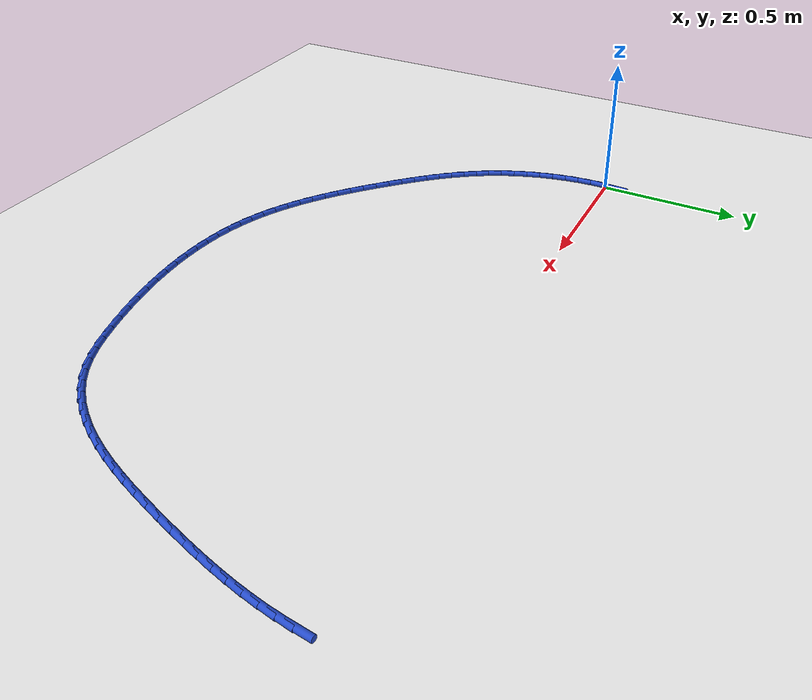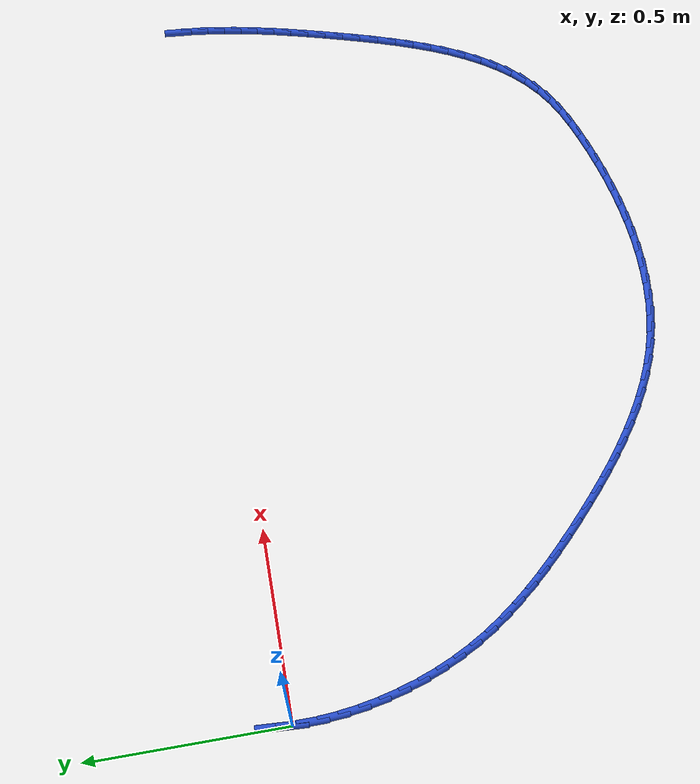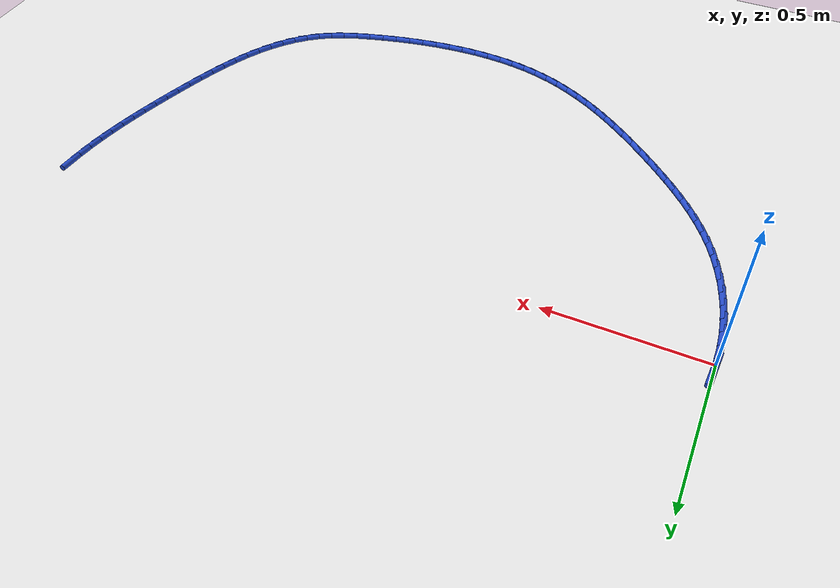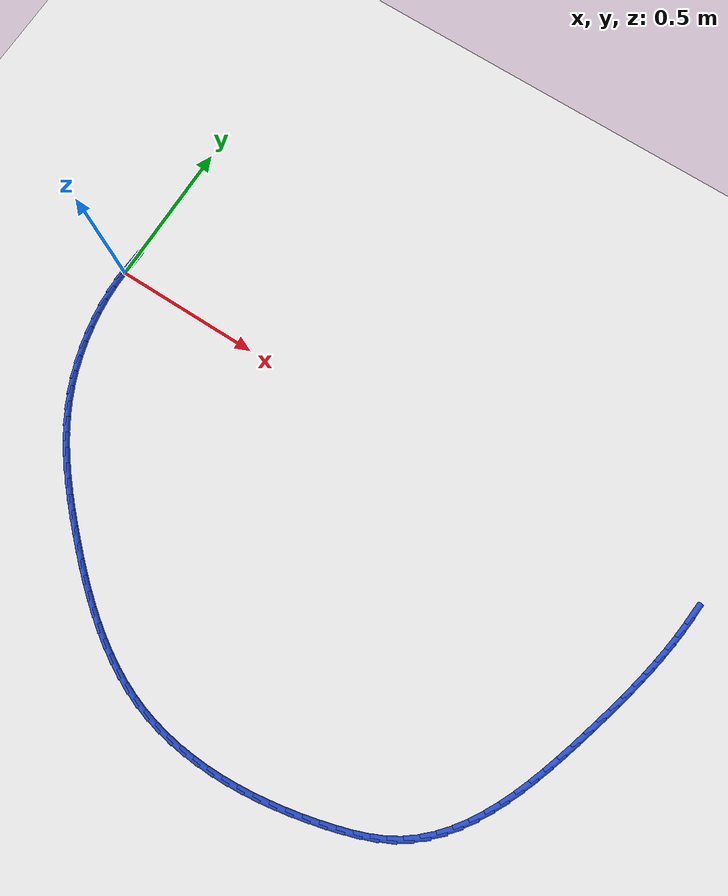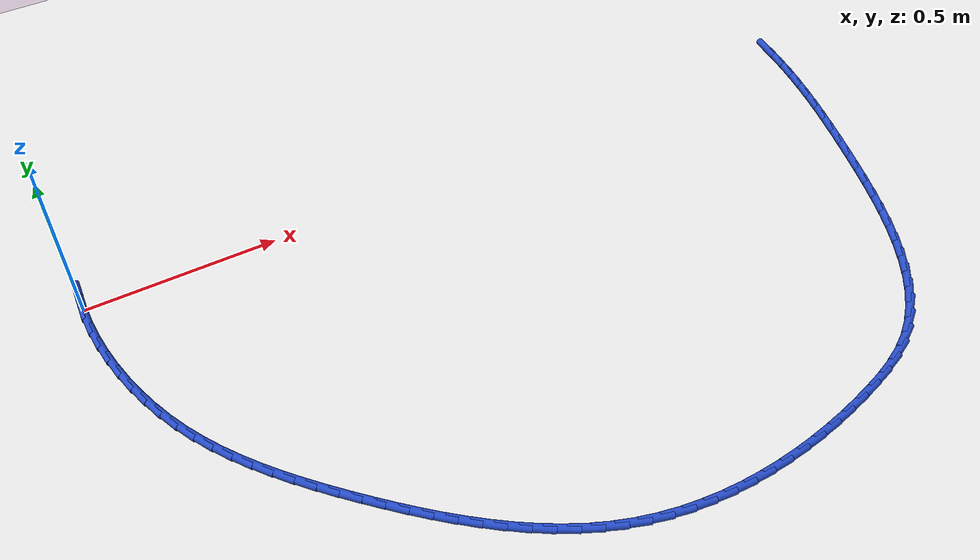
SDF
<sdf version="1.6">
 <world name="default">
  <model name="ground_plane">
   <static>1</static>
   <link name="link">
    <collision name="collision">
     <geometry><plane><normal>0 0 1</normal><size>100 100</size></plane></geometry>
     <surface><friction><ode><mu>100</mu><mu2>50</mu2></ode></friction></surface>
    </collision>
    <visual name="visual">
     <cast_shadows>0</cast_shadows>
     <geometry><plane><normal>0 0 1</normal><size>100 100</size></plane></geometry>
     <material>
      <script><uri>file://media/materials/scripts/gazebo.material</uri><name>Gazebo/WhiteGlow</name></script>
     </material>
    </visual>
   </link>
  </model>
  <model name="line">
   <link name="link_0">
    <pose>1.0408340855860843e-17 8.326672684688674e-17 0.01 0 1.57 1.5136941876043444</pose>
    <collision name="collision">
     <geometry><cylinder><radius>0.01</radius><length>0.08</length></cylinder></geometry>
    </collision>
    <visual name="visual">
     <material>
      <script><name>Gazebo/Blue</name><uri>file://media/materials/scripts/gazebo.material</uri></script>
     </material>
     <geometry><cylinder><radius>0.01</radius><length>0.08</length></cylinder></geometry>
    </visual>
   </link>
   <link name="link_72">
    <pose>2.1155282700317573 0.031848224926894285 0.01 0 1.57 1.48652621558645</pose>
    <collision name="collision">
     <geometry><cylinder><radius>0.01</radius><length>0.08</length></cylinder></geometry>
    </collision>
    <visual name="visual">
     <material>
      <script><name>Gazebo/Blue</name><uri>file://media/materials/scripts/gazebo.material</uri></script>
     </material>
     <geometry><cylinder><radius>0.01</radius><length>0.08</length></cylinder></geometry>
    </visual>
   </link>
   <link name="link_73">
    <pose>2.1113230786885753 -0.017934933611354374 0.01 0 1.57 1.4514240440218522</pose>
    <collision name="collision">
     <geometry><cylinder><radius>0.01</radius><length>0.08</length></cylinder></geometry>
    </collision>
    <visual name="visual">
     <material>
      <script><name>Gazebo/Blue</name><uri>file://media/materials/scripts/gazebo.material</uri></script>
     </material>
     <geometry><cylinder><radius>0.01</radius><length>0.08</length></cylinder></geometry>
    </visual>
   </link>
   <link name="link_74">
    <pose>2.1053743930525406 -0.06753106157821223 0.01 0 1.57 1.4192770511162327</pose>
    <collision name="collision">
     <geometry><cylinder><radius>0.01</radius><length>0.08</length></cylinder></geometry>
    </collision>
    <visual name="visual">
     <material>
      <script><name>Gazebo/Blue</name><uri>file://media/materials/scripts/gazebo.material</uri></script>
     </material>
     <geometry><cylinder><radius>0.01</radius><length>0.08</length></cylinder></geometry>
    </visual>
   </link>
   <link name="link_75">
    <pose>2.097816437116438 -0.11702990215512732 0.01 0 1.57 1.3902664679015286</pose>
    <collision name="collision">
     <geometry><cylinder><radius>0.01</radius><length>0.08</length></cylinder></geometry>
    </collision>
    <visual name="visual">
     <material>
      <script><name>Gazebo/Blue</name><uri>file://media/materials/scripts/gazebo.material</uri></script>
     </material>
     <geometry><cylinder><radius>0.01</radius><length>0.08</length></cylinder></geometry>
    </visual>
   </link>
   <link name="link_76">
    <pose>2.0887834348730516 -0.16652119852354666 0.01 0 1.57 1.364511534390616</pose>
    <collision name="collision">
     <geometry><cylinder><radius>0.01</radius><length>0.08</length></cylinder></geometry>
    </collision>
    <visual name="visual">
     <material>
      <script><name>Gazebo/Blue</name><uri>file://media/materials/scripts/gazebo.material</uri></script>
     </material>
     <geometry><cylinder><radius>0.01</radius><length>0.08</length></cylinder></geometry>
    </visual>
   </link>
   <link name="link_77">
    <pose>2.078409610315166 -0.21609469386491742 0.01 0 1.57 1.3420762548755794</pose>
    <collision name="collision">
     <geometry><cylinder><radius>0.01</radius><length>0.08</length></cylinder></geometry>
    </collision>
    <visual name="visual">
     <material>
      <script><name>Gazebo/Blue</name><uri>file://media/materials/scripts/gazebo.material</uri></script>
     </material>
     <geometry><cylinder><radius>0.01</radius><length>0.08</length></cylinder></geometry>
    </visual>
   </link>
   <link name="link_78">
    <pose>2.0668291874355673 -0.26584013136068757 0.01 0 1.57 1.3229774308372935</pose>
    <collision name="collision">
     <geometry><cylinder><radius>0.01</radius><length>0.08</length></cylinder></geometry>
    </collision>
    <visual name="visual">
     <material>
      <script><name>Gazebo/Blue</name><uri>file://media/materials/scripts/gazebo.material</uri></script>
     </material>
     <geometry><cylinder><radius>0.01</radius><length>0.08</length></cylinder></geometry>
    </visual>
   </link>
   <link name="link_79">
    <pose>2.0541763902270387 -0.3158472541923024 0.01 0 1.57 1.307192978818918</pose>
    <collision name="collision">
     <geometry><cylinder><radius>0.01</radius><length>0.08</length></cylinder></geometry>
    </collision>
    <visual name="visual">
     <material>
      <script><name>Gazebo/Blue</name><uri>file://media/materials/scripts/gazebo.material</uri></script>
     </material>
     <geometry><cylinder><radius>0.01</radius><length>0.08</length></cylinder></geometry>
    </visual>
   </link>
   <link name="link_80">
    <pose>2.040585442682366 -0.3662058055412101 0.01 0 1.57 1.2946698052939263</pose>
    <collision name="collision">
     <geometry><cylinder><radius>0.01</radius><length>0.08</length></cylinder></geometry>
    </collision>
    <visual name="visual">
     <material>
      <script><name>Gazebo/Blue</name><uri>file://media/materials/scripts/gazebo.material</uri></script>
     </material>
     <geometry><cylinder><radius>0.01</radius><length>0.08</length></cylinder></geometry>
    </visual>
   </link>
   <link name="link_81">
    <pose>2.026190568794333 -0.41700552858885775 0.01 0 1.57 1.2851600542314623</pose>
    <collision name="collision">
     <geometry><cylinder><radius>0.01</radius><length>0.08</length></cylinder></geometry>
    </collision>
    <visual name="visual">
     <material>
      <script><name>Gazebo/Blue</name><uri>file://media/materials/scripts/gazebo.material</uri></script>
     </material>
     <geometry><cylinder><radius>0.01</radius><length>0.08</length></cylinder></geometry>
    </visual>
   </link>
   <link name="link_82">
    <pose>2.0111191521943117 -0.4683270463985554 0.01 0 1.57 1.2743036251731987</pose>
    <collision name="collision">
     <geometry><cylinder><radius>0.01</radius><length>0.08</length></cylinder></geometry>
    </collision>
    <visual name="visual">
     <material>
      <script><name>Gazebo/Blue</name><uri>file://media/materials/scripts/gazebo.material</uri></script>
     </material>
     <geometry><cylinder><radius>0.01</radius><length>0.08</length></cylinder></geometry>
    </visual>
   </link>
   <link name="link_83">
    <pose>1.995326577650408 -0.5200216593622096 0.01 0 1.57 1.2575539610958015</pose>
    <collision name="collision">
     <geometry><cylinder><radius>0.01</radius><length>0.08</length></cylinder></geometry>
    </collision>
    <visual name="visual">
     <material>
      <script><name>Gazebo/Blue</name><uri>file://media/materials/scripts/gazebo.material</uri></script>
     </material>
     <geometry><cylinder><radius>0.01</radius><length>0.08</length></cylinder></geometry>
    </visual>
   </link>
   <link name="link_84">
    <pose>1.978587663017944 -0.5716999215899256 0.01 0 1.57 1.234510478617657</pose>
    <collision name="collision">
     <geometry><cylinder><radius>0.01</radius><length>0.08</length></cylinder></geometry>
    </collision>
    <visual name="visual">
     <material>
      <script><name>Gazebo/Blue</name><uri>file://media/materials/scripts/gazebo.material</uri></script>
     </material>
     <geometry><cylinder><radius>0.01</radius><length>0.08</length></cylinder></geometry>
    </visual>
   </link>
   <link name="link_85">
    <pose>1.9606686709113106 -0.6229609806588371 0.01 0 1.57 1.2048033797453965</pose>
    <collision name="collision">
     <geometry><cylinder><radius>0.01</radius><length>0.08</length></cylinder></geometry>
    </collision>
    <visual name="visual">
     <material>
      <script><name>Gazebo/Blue</name><uri>file://media/materials/scripts/gazebo.material</uri></script>
     </material>
     <geometry><cylinder><radius>0.01</radius><length>0.08</length></cylinder></geometry>
    </visual>
   </link>
   <link name="link_86">
    <pose>1.9413358639448997 -0.6734039841460779 0.01 0 1.57 1.1678916608366743</pose>
    <collision name="collision">
     <geometry><cylinder><radius>0.01</radius><length>0.08</length></cylinder></geometry>
    </collision>
    <visual name="visual">
     <material>
      <script><name>Gazebo/Blue</name><uri>file://media/materials/scripts/gazebo.material</uri></script>
     </material>
     <geometry><cylinder><radius>0.01</radius><length>0.08</length></cylinder></geometry>
    </visual>
   </link>
   <link name="link_87">
    <pose>1.9203555047331027 -0.7226280796287822 0.01 0 1.57 1.1230788708324444</pose>
    <collision name="collision">
     <geometry><cylinder><radius>0.01</radius><length>0.08</length></cylinder></geometry>
    </collision>
    <visual name="visual">
     <material>
      <script><name>Gazebo/Blue</name><uri>file://media/materials/scripts/gazebo.material</uri></script>
     </material>
     <geometry><cylinder><radius>0.01</radius><length>0.08</length></cylinder></geometry>
    </visual>
   </link>
   <link name="link_88">
    <pose>1.8974938558903112 -0.7702324146840825 0.01 0 1.57 1.069543976481417</pose>
    <collision name="collision">
     <geometry><cylinder><radius>0.01</radius><length>0.08</length></cylinder></geometry>
    </collision>
    <visual name="visual">
     <material>
      <script><name>Gazebo/Blue</name><uri>file://media/materials/scripts/gazebo.material</uri></script>
     </material>
     <geometry><cylinder><radius>0.01</radius><length>0.08</length></cylinder></geometry>
    </visual>
   </link>
   <link name="link_89">
    <pose>1.8725171800309166 -0.8158161368891133 0.01 0 1.57 1.0064031541049574</pose>
    <collision name="collision">
     <geometry><cylinder><radius>0.01</radius><length>0.08</length></cylinder></geometry>
    </collision>
    <visual name="visual">
     <material>
      <script><name>Gazebo/Blue</name><uri>file://media/materials/scripts/gazebo.material</uri></script>
     </material>
     <geometry><cylinder><radius>0.01</radius><length>0.08</length></cylinder></geometry>
    </visual>
   </link>
   <link name="link_90">
    <pose>1.8451917397693105 -0.8589783938210078 0.01 0 1.57 0.9328233985098401</pose>
    <collision name="collision">
     <geometry><cylinder><radius>0.01</radius><length>0.08</length></cylinder></geometry>
    </collision>
    <visual name="visual">
     <material>
      <script><name>Gazebo/Blue</name><uri>file://media/materials/scripts/gazebo.material</uri></script>
     </material>
     <geometry><cylinder><radius>0.01</radius><length>0.08</length></cylinder></geometry>
    </visual>
   </link>
   <link name="link_91">
    <pose>1.8152837977198837 -0.8993183330569008 0.01 0 1.57 0.8482095898845374</pose>
    <collision name="collision">
     <geometry><cylinder><radius>0.01</radius><length>0.08</length></cylinder></geometry>
    </collision>
    <visual name="visual">
     <material>
      <script><name>Gazebo/Blue</name><uri>file://media/materials/scripts/gazebo.material</uri></script>
     </material>
     <geometry><cylinder><radius>0.01</radius><length>0.08</length></cylinder></geometry>
    </visual>
   </link>
   <link name="link_92">
    <pose>1.7825596164970292 -0.9364351021739248 0.01 0 1.57 0.7524735395124444</pose>
    <collision name="collision">
     <geometry><cylinder><radius>0.01</radius><length>0.08</length></cylinder></geometry>
    </collision>
    <visual name="visual">
     <material>
      <script><name>Gazebo/Blue</name><uri>file://media/materials/scripts/gazebo.material</uri></script>
     </material>
     <geometry><cylinder><radius>0.01</radius><length>0.08</length></cylinder></geometry>
    </visual>
   </link>
   <link name="link_93">
    <pose>1.7467854587151366 -0.9699278487492136 0.01 0 1.57 0.6463538039507484</pose>
    <collision name="collision">
     <geometry><cylinder><radius>0.01</radius><length>0.08</length></cylinder></geometry>
    </collision>
    <visual name="visual">
     <material>
      <script><name>Gazebo/Blue</name><uri>file://media/materials/scripts/gazebo.material</uri></script>
     </material>
     <geometry><cylinder><radius>0.01</radius><length>0.08</length></cylinder></geometry>
    </visual>
   </link>
   <link name="link_94">
    <pose>1.7077275869885986 -0.9993957203599013 0.01 0 1.57 0.5328824947516285</pose>
    <collision name="collision">
     <geometry><cylinder><radius>0.01</radius><length>0.08</length></cylinder></geometry>
    </collision>
    <visual name="visual">
     <material>
      <script><name>Gazebo/Blue</name><uri>file://media/materials/scripts/gazebo.material</uri></script>
     </material>
     <geometry><cylinder><radius>0.01</radius><length>0.08</length></cylinder></geometry>
    </visual>
   </link>
   <link name="link_95">
    <pose>1.66518968925172 -1.024484386364132 0.01 0 1.57 0.4317560234842781</pose>
    <collision name="collision">
     <geometry><cylinder><radius>0.01</radius><length>0.08</length></cylinder></geometry>
    </collision>
    <visual name="visual">
     <material>
      <script><name>Gazebo/Blue</name><uri>file://media/materials/scripts/gazebo.material</uri></script>
     </material>
     <geometry><cylinder><radius>0.01</radius><length>0.08</length></cylinder></geometry>
    </visual>
   </link>
   <link name="link_96">
    <pose>1.6195259814989151 -1.04552385351278 0.01 0 1.57 0.3557548782639355</pose>
    <collision name="collision">
     <geometry><cylinder><radius>0.01</radius><length>0.08</length></cylinder></geometry>
    </collision>
    <visual name="visual">
     <material>
      <script><name>Gazebo/Blue</name><uri>file://media/materials/scripts/gazebo.material</uri></script>
     </material>
     <geometry><cylinder><radius>0.01</radius><length>0.08</length></cylinder></geometry>
    </visual>
   </link>
   <link name="link_97">
    <pose>1.5715096877221122 -1.0633649791024635 0.01 0 1.57 0.30309321381120535</pose>
    <collision name="collision">
     <geometry><cylinder><radius>0.01</radius><length>0.08</length></cylinder></geometry>
    </collision>
    <visual name="visual">
     <material>
      <script><name>Gazebo/Blue</name><uri>file://media/materials/scripts/gazebo.material</uri></script>
     </material>
     <geometry><cylinder><radius>0.01</radius><length>0.08</length></cylinder></geometry>
    </visual>
   </link>
   <link name="link_98">
    <pose>1.5219245371980556 -1.0788716790906412 0.01 0 1.57 0.2693400215066725</pose>
    <collision name="collision">
     <geometry><cylinder><radius>0.01</radius><length>0.08</length></cylinder></geometry>
    </collision>
    <visual name="visual">
     <material>
      <script><name>Gazebo/Blue</name><uri>file://media/materials/scripts/gazebo.material</uri></script>
     </material>
     <geometry><cylinder><radius>0.01</radius><length>0.08</length></cylinder></geometry>
    </visual>
   </link>
   <link name="link_99">
    <pose>1.4714821259368112 -1.0927961925146692 0.01 0 1.57 0.23920866782601974</pose>
    <collision name="collision">
     <geometry><cylinder><radius>0.01</radius><length>0.08</length></cylinder></geometry>
    </collision>
    <visual name="visual">
     <material>
      <script><name>Gazebo/Blue</name><uri>file://media/materials/scripts/gazebo.material</uri></script>
     </material>
     <geometry><cylinder><radius>0.01</radius><length>0.08</length></cylinder></geometry>
    </visual>
   </link>
   <link name="link_100">
    <pose>1.4204715021219334 -1.1052365687150612 0.01 0 1.57 0.20724794021210152</pose>
    <collision name="collision">
     <geometry><cylinder><radius>0.01</radius><length>0.08</length></cylinder></geometry>
    </collision>
    <visual name="visual">
     <material>
      <script><name>Gazebo/Blue</name><uri>file://media/materials/scripts/gazebo.material</uri></script>
     </material>
     <geometry><cylinder><radius>0.01</radius><length>0.08</length></cylinder></geometry>
    </visual>
   </link>
   <link name="link_101">
    <pose>1.3690283212295622 -1.1160533740245695 0.01 0 1.57 0.17322529626640595</pose>
    <collision name="collision">
     <geometry><cylinder><radius>0.01</radius><length>0.08</length></cylinder></geometry>
    </collision>
    <visual name="visual">
     <material>
      <script><name>Gazebo/Blue</name><uri>file://media/materials/scripts/gazebo.material</uri></script>
     </material>
     <geometry><cylinder><radius>0.01</radius><length>0.08</length></cylinder></geometry>
    </visual>
   </link>
   <link name="link_102">
    <pose>1.3172880225406587 -1.125106840061984 0.01 0 1.57 0.13690479581900009</pose>
    <collision name="collision">
     <geometry><cylinder><radius>0.01</radius><length>0.08</length></cylinder></geometry>
    </collision>
    <visual name="visual">
     <material>
      <script><name>Gazebo/Blue</name><uri>file://media/materials/scripts/gazebo.material</uri></script>
     </material>
     <geometry><cylinder><radius>0.01</radius><length>0.08</length></cylinder></geometry>
    </visual>
   </link>
   <link name="link_103">
    <pose>1.2653860453361847 -1.1322571984460943 0.01 0 1.57 0.09804125157841904</pose>
    <collision name="collision">
     <geometry><cylinder><radius>0.01</radius><length>0.08</length></cylinder></geometry>
    </collision>
    <visual name="visual">
     <material>
      <script><name>Gazebo/Blue</name><uri>file://media/materials/scripts/gazebo.material</uri></script>
     </material>
     <geometry><cylinder><radius>0.01</radius><length>0.08</length></cylinder></geometry>
    </visual>
   </link>
   <link name="link_104">
    <pose>1.2134578288971012 -1.1373646807956903 0.01 0 1.57 0.05638350608794965</pose>
    <collision name="collision">
     <geometry><cylinder><radius>0.01</radius><length>0.08</length></cylinder></geometry>
    </collision>
    <visual name="visual">
     <material>
      <script><name>Gazebo/Blue</name><uri>file://media/materials/scripts/gazebo.material</uri></script>
     </material>
     <geometry><cylinder><radius>0.01</radius><length>0.08</length></cylinder></geometry>
    </visual>
   </link>
   <link name="link_105">
    <pose>1.1616388125043704 -1.1402895187295612 0.01 0 1.57 0.011680174834520827</pose>
    <collision name="collision">
     <geometry><cylinder><radius>0.01</radius><length>0.08</length></cylinder></geometry>
    </collision>
    <visual name="visual">
     <material>
      <script><name>Gazebo/Blue</name><uri>file://media/materials/scripts/gazebo.material</uri></script>
     </material>
     <geometry><cylinder><radius>0.01</radius><length>0.08</length></cylinder></geometry>
    </visual>
   </link>
   <link name="link_106">
    <pose>1.110064435438954 -1.140891943866497 0.01 0 1.57 -0.03631143798956349</pose>
    <collision name="collision">
     <geometry><cylinder><radius>0.01</radius><length>0.08</length></cylinder></geometry>
    </collision>
    <visual name="visual">
     <material>
      <script><name>Gazebo/Blue</name><uri>file://media/materials/scripts/gazebo.material</uri></script>
     </material>
     <geometry><cylinder><radius>0.01</radius><length>0.08</length></cylinder></geometry>
    </visual>
   </link>
   <link name="link_107">
    <pose>1.058870136981813 -1.1390321878252876 0.01 0 1.57 -0.08781252275789207</pose>
    <collision name="collision">
     <geometry><cylinder><radius>0.01</radius><length>0.08</length></cylinder></geometry>
    </collision>
    <visual name="visual">
     <material>
      <script><name>Gazebo/Blue</name><uri>file://media/materials/scripts/gazebo.material</uri></script>
     </material>
     <geometry><cylinder><radius>0.01</radius><length>0.08</length></cylinder></geometry>
    </visual>
   </link>
   <link name="link_108">
    <pose>1.0081913564139091 -1.1345704822247222 0.01 0 1.57 -0.1430054576180554</pose>
    <collision name="collision">
     <geometry><cylinder><radius>0.01</radius><length>0.08</length></cylinder></geometry>
    </collision>
    <visual name="visual">
     <material>
      <script><name>Gazebo/Blue</name><uri>file://media/materials/scripts/gazebo.material</uri></script>
     </material>
     <geometry><cylinder><radius>0.01</radius><length>0.08</length></cylinder></geometry>
    </visual>
   </link>
   <link name="link_109">
    <pose>0.9581635330162029 -1.1273670586835902 0.01 0 1.57 -0.2020118325310961</pose>
    <collision name="collision">
     <geometry><cylinder><radius>0.01</radius><length>0.08</length></cylinder></geometry>
    </collision>
    <visual name="visual">
     <material>
      <script><name>Gazebo/Blue</name><uri>file://media/materials/scripts/gazebo.material</uri></script>
     </material>
     <geometry><cylinder><radius>0.01</radius><length>0.08</length></cylinder></geometry>
    </visual>
   </link>
   <link name="link_110">
    <pose>0.9089221060696583 -1.1172821488206826 0.01 0 1.57 -0.26486642230267715</pose>
    <collision name="collision">
     <geometry><cylinder><radius>0.01</radius><length>0.08</length></cylinder></geometry>
    </collision>
    <visual name="visual">
     <material>
      <script><name>Gazebo/Blue</name><uri>file://media/materials/scripts/gazebo.material</uri></script>
     </material>
     <geometry><cylinder><radius>0.01</radius><length>0.08</length></cylinder></geometry>
    </visual>
   </link>
   <link name="link_111">
    <pose>0.8606025148552349 -1.1041759842547871 0.01 0 1.57 -0.3312184352941702</pose>
    <collision name="collision">
     <geometry><cylinder><radius>0.01</radius><length>0.08</length></cylinder></geometry>
    </collision>
    <visual name="visual">
     <material>
      <script><name>Gazebo/Blue</name><uri>file://media/materials/scripts/gazebo.material</uri></script>
     </material>
     <geometry><cylinder><radius>0.01</radius><length>0.08</length></cylinder></geometry>
    </visual>
   </link>
   <link name="link_112">
    <pose>0.8133347442444061 -1.0879212208017253 0.01 0 1.57 -0.39631417597219487</pose>
    <collision name="collision">
     <geometry><cylinder><radius>0.01</radius><length>0.08</length></cylinder></geometry>
    </collision>
    <visual name="visual">
     <material>
      <script><name>Gazebo/Blue</name><uri>file://media/materials/scripts/gazebo.material</uri></script>
     </material>
     <geometry><cylinder><radius>0.01</radius><length>0.08</length></cylinder></geometry>
    </visual>
   </link>
   <link name="link_113">
    <pose>0.7671576198102424 -1.0685981593187834 0.01 0 1.57 -0.4561339815474686</pose>
    <collision name="collision">
     <geometry><cylinder><radius>0.01</radius><length>0.08</length></cylinder></geometry>
    </collision>
    <visual name="visual">
     <material>
      <script><name>Gazebo/Blue</name><uri>file://media/materials/scripts/gazebo.material</uri></script>
     </material>
     <geometry><cylinder><radius>0.01</radius><length>0.08</length></cylinder></geometry>
    </visual>
   </link>
   <link name="link_114">
    <pose>0.7220345659620854 -1.046458851412151 0.01 0 1.57 -0.510453042946473</pose>
    <collision name="collision">
     <geometry><cylinder><radius>0.01</radius><length>0.08</length></cylinder></geometry>
    </collision>
    <visual name="visual">
     <material>
      <script><name>Gazebo/Blue</name><uri>file://media/materials/scripts/gazebo.material</uri></script>
     </material>
     <geometry><cylinder><radius>0.01</radius><length>0.08</length></cylinder></geometry>
    </visual>
   </link>
   <link name="link_115">
    <pose>0.6779267399545561 -1.0217605128725122 0.01 0 1.57 -0.5593159506758651</pose>
    <collision name="collision">
     <geometry><cylinder><radius>0.01</radius><length>0.08</length></cylinder></geometry>
    </collision>
    <visual name="visual">
     <material>
      <script><name>Gazebo/Blue</name><uri>file://media/materials/scripts/gazebo.material</uri></script>
     </material>
     <geometry><cylinder><radius>0.01</radius><length>0.08</length></cylinder></geometry>
    </visual>
   </link>
   <link name="link_116">
    <pose>0.6347952990422756 -0.9947603594905525 0.01 0 1.57 -0.602873670103213</pose>
    <collision name="collision">
     <geometry><cylinder><radius>0.01</radius><length>0.08</length></cylinder></geometry>
    </collision>
    <visual name="visual">
     <material>
      <script><name>Gazebo/Blue</name><uri>file://media/materials/scripts/gazebo.material</uri></script>
     </material>
     <geometry><cylinder><radius>0.01</radius><length>0.08</length></cylinder></geometry>
    </visual>
   </link>
   <link name="link_117">
    <pose>0.5926014004798651 -0.9657156070569565 0.01 0 1.57 -0.6413392829838225</pose>
    <collision name="collision">
     <geometry><cylinder><radius>0.01</radius><length>0.08</length></cylinder></geometry>
    </collision>
    <visual name="visual">
     <material>
      <script><name>Gazebo/Blue</name><uri>file://media/materials/scripts/gazebo.material</uri></script>
     </material>
     <geometry><cylinder><radius>0.01</radius><length>0.08</length></cylinder></geometry>
    </visual>
   </link>
   <link name="link_118">
    <pose>0.5513062015219472 -0.9348834713624101 0.01 0 1.57 -0.6749524679906849</pose>
    <collision name="collision">
     <geometry><cylinder><radius>0.01</radius><length>0.08</length></cylinder></geometry>
    </collision>
    <visual name="visual">
     <material>
      <script><name>Gazebo/Blue</name><uri>file://media/materials/scripts/gazebo.material</uri></script>
     </material>
     <geometry><cylinder><radius>0.01</radius><length>0.08</length></cylinder></geometry>
    </visual>
   </link>
   <link name="link_119">
    <pose>0.5108708594231427 -0.9025211681975981 0.01 0 1.57 -0.7039526915980938</pose>
    <collision name="collision">
     <geometry><cylinder><radius>0.01</radius><length>0.08</length></cylinder></geometry>
    </collision>
    <visual name="visual">
     <material>
      <script><name>Gazebo/Blue</name><uri>file://media/materials/scripts/gazebo.material</uri></script>
     </material>
     <geometry><cylinder><radius>0.01</radius><length>0.08</length></cylinder></geometry>
    </visual>
   </link>
   <link name="link_120">
    <pose>0.4712565314380729 -0.8688859133532058 0.01 0 1.57 -0.7285597928955548</pose>
    <collision name="collision">
     <geometry><cylinder><radius>0.01</radius><length>0.08</length></cylinder></geometry>
    </collision>
    <visual name="visual">
     <material>
      <script><name>Gazebo/Blue</name><uri>file://media/materials/scripts/gazebo.material</uri></script>
     </material>
     <geometry><cylinder><radius>0.01</radius><length>0.08</length></cylinder></geometry>
    </visual>
   </link>
   <link name="link_121">
    <pose>0.43242437482135987 -0.8342349226199182 0.01 0 1.57 -0.7489601799027146</pose>
    <collision name="collision">
     <geometry><cylinder><radius>0.01</radius><length>0.08</length></cylinder></geometry>
    </collision>
    <visual name="visual">
     <material>
      <script><name>Gazebo/Blue</name><uri>file://media/materials/scripts/gazebo.material</uri></script>
     </material>
     <geometry><cylinder><radius>0.01</radius><length>0.08</length></cylinder></geometry>
    </visual>
   </link>
   <link name="link_122">
    <pose>0.39433554682762373 -0.7988254117884196 0.01 0 1.57 -0.7655209343972439</pose>
    <collision name="collision">
     <geometry><cylinder><radius>0.01</radius><length>0.08</length></cylinder></geometry>
    </collision>
    <visual name="visual">
     <material>
      <script><name>Gazebo/Blue</name><uri>file://media/materials/scripts/gazebo.material</uri></script>
     </material>
     <geometry><cylinder><radius>0.01</radius><length>0.08</length></cylinder></geometry>
    </visual>
   </link>
   <link name="link_123">
    <pose>0.35695729986079194 -0.7629043440040647 0.01 0 1.57 -0.7829290031275526</pose>
    <collision name="collision">
     <geometry><cylinder><radius>0.01</radius><length>0.08</length></cylinder></geometry>
    </collision>
    <visual name="visual">
     <material>
      <script><name>Gazebo/Blue</name><uri>file://media/materials/scripts/gazebo.material</uri></script>
     </material>
     <geometry><cylinder><radius>0.01</radius><length>0.08</length></cylinder></geometry>
    </visual>
   </link>
   <link name="link_124">
    <pose>0.3203816296943404 -0.7265088516990027 0.01 0 1.57 -0.8055728125047324</pose>
    <collision name="collision">
     <geometry><cylinder><radius>0.01</radius><length>0.08</length></cylinder></geometry>
    </collision>
    <visual name="visual">
     <material>
      <script><name>Gazebo/Blue</name><uri>file://media/materials/scripts/gazebo.material</uri></script>
     </material>
     <geometry><cylinder><radius>0.01</radius><length>0.08</length></cylinder></geometry>
    </visual>
   </link>
   <link name="link_125">
    <pose>0.28481725421571846 -0.6894797291391989 0.01 0 1.57 -0.8337139273404929</pose>
    <collision name="collision">
     <geometry><cylinder><radius>0.01</radius><length>0.08</length></cylinder></geometry>
    </collision>
    <visual name="visual">
     <material>
      <script><name>Gazebo/Blue</name><uri>file://media/materials/scripts/gazebo.material</uri></script>
     </material>
     <geometry><cylinder><radius>0.01</radius><length>0.08</length></cylinder></geometry>
    </visual>
   </link>
   <link name="link_126">
    <pose>0.25047737998878294 -0.651650220191945 0.01 0 1.57 -0.8674254408212011</pose>
    <collision name="collision">
     <geometry><cylinder><radius>0.01</radius><length>0.08</length></cylinder></geometry>
    </collision>
    <visual name="visual">
     <material>
      <script><name>Gazebo/Blue</name><uri>file://media/materials/scripts/gazebo.material</uri></script>
     </material>
     <geometry><cylinder><radius>0.01</radius><length>0.08</length></cylinder></geometry>
    </visual>
   </link>
   <link name="link_127">
    <pose>0.21757521357739185 -0.6128535687245342 0.01 0 1.57 -0.9067306528065379</pose>
    <collision name="collision">
     <geometry><cylinder><radius>0.01</radius><length>0.08</length></cylinder></geometry>
    </collision>
    <visual name="visual">
     <material>
      <script><name>Gazebo/Blue</name><uri>file://media/materials/scripts/gazebo.material</uri></script>
     </material>
     <geometry><cylinder><radius>0.01</radius><length>0.08</length></cylinder></geometry>
    </visual>
   </link>
   <link name="link_128">
    <pose>0.18632396154540173 -0.572923018604258 0.01 0 1.57 -0.9515710689449075</pose>
    <collision name="collision">
     <geometry><cylinder><radius>0.01</radius><length>0.08</length></cylinder></geometry>
    </collision>
    <visual name="visual">
     <material>
      <script><name>Gazebo/Blue</name><uri>file://media/materials/scripts/gazebo.material</uri></script>
     </material>
     <geometry><cylinder><radius>0.01</radius><length>0.08</length></cylinder></geometry>
    </visual>
   </link>
   <link name="link_129">
    <pose>0.15693683045666984 -0.5316918136984088 0.01 0 1.57 -1.0017707967102152</pose>
    <collision name="collision">
     <geometry><cylinder><radius>0.01</radius><length>0.08</length></cylinder></geometry>
    </collision>
    <visual name="visual">
     <material>
      <script><name>Gazebo/Blue</name><uri>file://media/materials/scripts/gazebo.material</uri></script>
     </material>
     <geometry><cylinder><radius>0.01</radius><length>0.08</length></cylinder></geometry>
    </visual>
   </link>
   <link name="link_130">
    <pose>0.12962702687505312 -0.48899319787427814 0.01 0 1.57 -1.0570015499423104</pose>
    <collision name="collision">
     <geometry><cylinder><radius>0.01</radius><length>0.08</length></cylinder></geometry>
    </collision>
    <visual name="visual">
     <material>
      <script><name>Gazebo/Blue</name><uri>file://media/materials/scripts/gazebo.material</uri></script>
     </material>
     <geometry><cylinder><radius>0.01</radius><length>0.08</length></cylinder></geometry>
    </visual>
   </link>
   <link name="link_131">
    <pose>0.1046077573644084 -0.4446604149991579 0.01 0 1.57 -1.116238236290967</pose>
    <collision name="collision">
     <geometry><cylinder><radius>0.01</radius><length>0.08</length></cylinder></geometry>
    </collision>
    <visual name="visual">
     <material>
      <script><name>Gazebo/Blue</name><uri>file://media/materials/scripts/gazebo.material</uri></script>
     </material>
     <geometry><cylinder><radius>0.01</radius><length>0.08</length></cylinder></geometry>
    </visual>
   </link>
   <link name="link_132">
    <pose>0.08208056390735605 -0.3985632356971707 0.01 0 1.57 -1.174910444338332</pose>
    <collision name="collision">
     <geometry><cylinder><radius>0.01</radius><length>0.08</length></cylinder></geometry>
    </collision>
    <visual name="visual">
     <material>
      <script><name>Gazebo/Blue</name><uri>file://media/materials/scripts/gazebo.material</uri></script>
     </material>
     <geometry><cylinder><radius>0.01</radius><length>0.08</length></cylinder></geometry>
    </visual>
   </link>
   <link name="link_133">
    <pose>0.062149664886342965 -0.3508761921097931 0.01 0 1.57 -1.2314674645162291</pose>
    <collision name="collision">
     <geometry><cylinder><radius>0.01</radius><length>0.08</length></cylinder></geometry>
    </collision>
    <visual name="visual">
     <material>
      <script><name>Gazebo/Blue</name><uri>file://media/materials/scripts/gazebo.material</uri></script>
     </material>
     <geometry><cylinder><radius>0.01</radius><length>0.08</length></cylinder></geometry>
    </visual>
   </link>
   <link name="link_134">
    <pose>0.04487089418311837 -0.3019253287950503 0.01 0 1.57 -1.286621198669214</pose>
    <collision name="collision">
     <geometry><cylinder><radius>0.01</radius><length>0.08</length></cylinder></geometry>
    </collision>
    <visual name="visual">
     <material>
      <script><name>Gazebo/Blue</name><uri>file://media/materials/scripts/gazebo.material</uri></script>
     </material>
     <geometry><cylinder><radius>0.01</radius><length>0.08</length></cylinder></geometry>
    </visual>
   </link>
   <link name="link_135">
    <pose>0.030299734572015444 -0.25203778977737146 0.01 0 1.57 -1.341087119855122</pose>
    <collision name="collision">
     <geometry><cylinder><radius>0.01</radius><length>0.08</length></cylinder></geometry>
    </collision>
    <visual name="visual">
     <material>
      <script><name>Gazebo/Blue</name><uri>file://media/materials/scripts/gazebo.material</uri></script>
     </material>
     <geometry><cylinder><radius>0.01</radius><length>0.08</length></cylinder></geometry>
    </visual>
   </link>
   <link name="link_136">
    <pose>0.01849166882736807 -0.20154071908118798 0.01 0 1.57 -1.3955816325952561</pose>
    <collision name="collision">
     <geometry><cylinder><radius>0.01</radius><length>0.08</length></cylinder></geometry>
    </collision>
    <visual name="visual">
     <material>
      <script><name>Gazebo/Blue</name><uri>file://media/materials/scripts/gazebo.material</uri></script>
     </material>
     <geometry><cylinder><radius>0.01</radius><length>0.08</length></cylinder></geometry>
    </visual>
   </link>
   <link name="link_137">
    <pose>0.009502179723509425 -0.15076126073092921 0.01 0 1.57 -1.4508376511193248</pose>
    <collision name="collision">
     <geometry><cylinder><radius>0.01</radius><length>0.08</length></cylinder></geometry>
    </collision>
    <visual name="visual">
     <material>
      <script><name>Gazebo/Blue</name><uri>file://media/materials/scripts/gazebo.material</uri></script>
     </material>
     <geometry><cylinder><radius>0.01</radius><length>0.08</length></cylinder></geometry>
    </visual>
   </link>
   <link name="link_138">
    <pose>0.00338675003477292 -0.10002655875102509 0.01 0 1.57 -1.5076217624036754</pose>
    <collision name="collision">
     <geometry><cylinder><radius>0.01</radius><length>0.08</length></cylinder></geometry>
    </collision>
    <visual name="visual">
     <material>
      <script><name>Gazebo/Blue</name><uri>file://media/materials/scripts/gazebo.material</uri></script>
     </material>
     <geometry><cylinder><radius>0.01</radius><length>0.08</length></cylinder></geometry>
    </visual>
   </link>
   <link name="link_139">
    <pose>0.0002008625354919663 -0.04966375716590548 0.01 0 1.57 -1.5667518997970724</pose>
    <collision name="collision">
     <geometry><cylinder><radius>0.01</radius><length>0.08</length></cylinder></geometry>
    </collision>
    <visual name="visual">
     <material>
      <script><name>Gazebo/Blue</name><uri>file://media/materials/scripts/gazebo.material</uri></script>
     </material>
     <geometry><cylinder><radius>0.01</radius><length>0.08</length></cylinder></geometry>
    </visual>
   </link>
   <link name="link_140">
    <pose>6.938893903907228e-18 2.3592239273284576e-16 0.01 0 1.57 1.5124787465261045</pose>
    <collision name="collision">
     <geometry><cylinder><radius>0.01</radius><length>0.08</length></cylinder></geometry>
    </collision>
    <visual name="visual">
     <material>
      <script><name>Gazebo/Blue</name><uri>file://media/materials/scripts/gazebo.material</uri></script>
     </material>
     <geometry><cylinder><radius>0.01</radius><length>0.08</length></cylinder></geometry>
    </visual>
   </link>
   <link name="link_141">
    <pose>0.0028396452026304767 0.04863756872226065 0.01 0 1.57 1.5124787465261047</pose>
    <collision name="collision">
     <geometry><cylinder><radius>0.01</radius><length>0.08</length></cylinder></geometry>
    </collision>
    <visual name="visual">
     <material>
      <script><name>Gazebo/Blue</name><uri>file://media/materials/scripts/gazebo.material</uri></script>
     </material>
     <geometry><cylinder><radius>0.01</radius><length>0.08</length></cylinder></geometry>
    </visual>
   </link>
  </model>
 </world>
</sdf>
